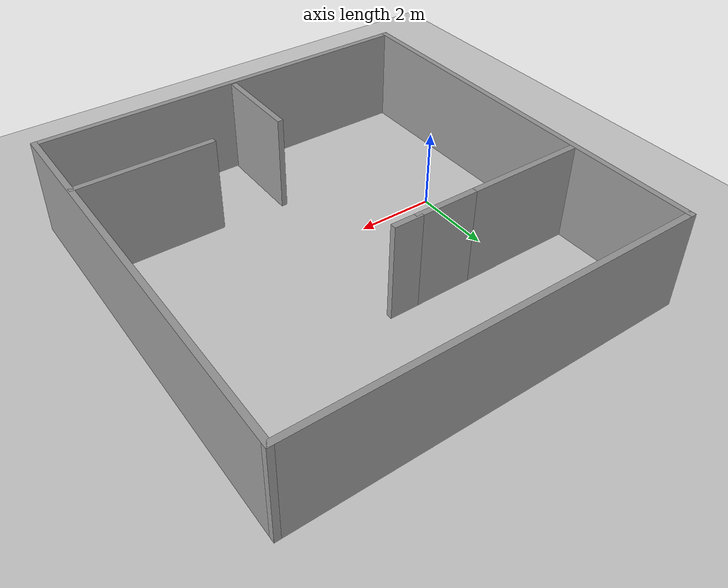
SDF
<sdf version="1.7">
 <world name="default">
  <light name="sun" type="directional">
   <pose>0 0 10 0 -0 0</pose>
   <diffuse>0.8 0.8 0.8 1</diffuse>
   <specular>0.2 0.2 0.2 1</specular>
   <attenuation>
    <range>1000</range>
    <constant>0.9</constant>
    <linear>0.01</linear>
    <quadratic>0.001</quadratic>
   </attenuation>
   <direction>-0.5 0.1 -0.9</direction>
   <spot><inner_angle>0</inner_angle><outer_angle>0</outer_angle><falloff>0</falloff></spot>
  </light>
  <model name="ground_plane">
   <static>1</static>
   <link name="link">
    <collision name="collision">
     <geometry><plane><normal>0 0 1</normal><size>100 100</size></plane></geometry>
     <surface>
      <contact><collide_bitmask>65535</collide_bitmask></contact>
      <friction><ode><mu>100</mu><mu2>50</mu2></ode></friction>
     </surface>
    </collision>
    <visual name="visual">
     <cast_shadows>0</cast_shadows>
     <geometry><plane><normal>0 0 1</normal><size>100 100</size></plane></geometry>
     <material>
      <script><uri>file://media/materials/scripts/gazebo.material</uri><name>Gazebo/Grey</name></script>
     </material>
    </visual>
   </link>
  </model>
  <gravity>0 0 -9.8</gravity>
  <magnetic_field>6e-06 2.3e-05 -4.2e-05</magnetic_field>
  <atmosphere type="adiabatic"/>
  <physics type="ode">
   <max_step_size>0.001</max_step_size>
   <real_time_factor>1</real_time_factor>
   <real_time_update_rate>1000</real_time_update_rate>
  </physics>
  <scene><ambient>0.4 0.4 0.4 1</ambient><background>0.7 0.7 0.7 1</background><shadows>1</shadows></scene>
  <spherical_coordinates>
   <surface_model>EARTH_WGS84</surface_model>
   <latitude_deg>0</latitude_deg>
   <longitude_deg>0</longitude_deg>
   <elevation>0</elevation>
   <heading_deg>0</heading_deg>
  </spherical_coordinates>
  <model name="room">
   <pose>3.177 0.84848 0 0 -0 0</pose>
   <link name="Wall_1">
    <collision name="Wall_1_Collision">
     <geometry><box><size>10.5 0.15 2.5</size></box></geometry>
     <pose>0 0 1.25 0 -0 0</pose>
    </collision>
    <visual name="Wall_1_Visual">
     <pose>0 0 1.25 0 -0 0</pose>
     <geometry><box><size>10.5 0.15 2.5</size></box></geometry>
     <material>
      <script><uri>file://media/materials/scripts/gazebo.material</uri><name>Gazebo/Grey</name></script>
      <ambient>1 1 1 1</ambient>
     </material>
     <meta><layer>0</layer></meta>
    </visual>
    <pose>-5.05 0 0 0 -0 -1.5708</pose>
   </link>
   <link name="Wall_11">
    <collision name="Wall_11_Collision">
     <geometry><box><size>3 0.15 2.5</size></box></geometry>
     <pose>0 0 1.25 0 -0 0</pose>
    </collision>
    <visual name="Wall_11_Visual">
     <pose>0 0 1.25 0 -0 0</pose>
     <geometry><box><size>3 0.15 2.5</size></box></geometry>
     <material>
      <script><uri>file://media/materials/scripts/gazebo.material</uri><name>Gazebo/Grey</name></script>
      <ambient>1 1 1 1</ambient>
     </material>
     <meta><layer>0</layer></meta>
    </visual>
    <pose>-3.49319 1.99829 0 0 -0 0</pose>
   </link>
   <link name="Wall_12">
    <collision name="Wall_12_Collision">
     <geometry><box><size>1.75 0.15 2.5</size></box></geometry>
     <pose>0 0 1.25 0 -0 0</pose>
    </collision>
    <visual name="Wall_12_Visual">
     <pose>0 0 1.25 0 -0 0</pose>
     <geometry><box><size>1.75 0.15 2.5</size></box></geometry>
     <material>
      <script><uri>file://media/materials/scripts/gazebo.material</uri><name>Gazebo/Grey</name></script>
      <ambient>1 1 1 1</ambient>
     </material>
     <meta><layer>0</layer></meta>
    </visual>
    <pose>-1.26819 1.99829 0 0 -0 0</pose>
   </link>
   <link name="Wall_13">
    <collision name="Wall_13_Collision">
     <geometry><box><size>0.75 0.15 2.5</size></box></geometry>
     <pose>0 0 1.25 0 -0 0</pose>
    </collision>
    <visual name="Wall_13_Visual">
     <pose>0 0 1.25 0 -0 0</pose>
     <geometry><box><size>0.75 0.15 2.5</size></box></geometry>
     <material>
      <script><uri>file://media/materials/scripts/gazebo.material</uri><name>Gazebo/Grey</name></script>
      <ambient>1 1 1 1</ambient>
     </material>
     <meta><layer>0</layer></meta>
    </visual>
    <pose>-0.168191 1.99829 0 0 -0 0</pose>
   </link>
   <link name="Wall_17">
    <collision name="Wall_17_Collision">
     <geometry><box><size>3.5 0.15 2.5</size></box></geometry>
     <pose>0 0 1.25 0 -0 0</pose>
    </collision>
    <visual name="Wall_17_Visual">
     <pose>0 0 1.25 0 -0 0</pose>
     <geometry><box><size>3.5 0.15 2.5</size></box></geometry>
     <material>
      <script><uri>file://media/materials/scripts/gazebo.material</uri><name>Gazebo/Grey</name></script>
      <ambient>1 1 1 1</ambient>
     </material>
     <meta><layer>0</layer></meta>
    </visual>
    <pose>3.33722 -2.9547 0 0 -0 0</pose>
   </link>
   <link name="Wall_2">
    <collision name="Wall_2_Collision">
     <geometry><box><size>10.25 0.15 2.5</size></box></geometry>
     <pose>0 0 1.25 0 -0 0</pose>
    </collision>
    <visual name="Wall_2_Visual">
     <pose>0 0 1.25 0 -0 0</pose>
     <geometry><box><size>10.25 0.15 2.5</size></box></geometry>
     <material>
      <script><uri>file://media/materials/scripts/gazebo.material</uri><name>Gazebo/Grey</name></script>
      <ambient>1 1 1 1</ambient>
     </material>
     <meta><layer>0</layer></meta>
    </visual>
    <pose>-0 -5.175 0 0 -0 0</pose>
   </link>
   <link name="Wall_3">
    <collision name="Wall_3_Collision">
     <geometry><box><size>10.5 0.15 2.5</size></box></geometry>
     <pose>0 0 1.25 0 -0 0</pose>
    </collision>
    <visual name="Wall_3_Visual">
     <pose>0 0 1.25 0 -0 0</pose>
     <geometry><box><size>10.5 0.15 2.5</size></box></geometry>
     <material>
      <script><uri>file://media/materials/scripts/gazebo.material</uri><name>Gazebo/Grey</name></script>
      <ambient>1 1 1 1</ambient>
     </material>
     <meta><layer>0</layer></meta>
    </visual>
    <pose>5.05 0 0 0 -0 1.5708</pose>
   </link>
   <link name="Wall_4">
    <collision name="Wall_4_Collision">
     <geometry><box><size>10.25 0.15 2.5</size></box></geometry>
     <pose>0 0 1.25 0 -0 0</pose>
    </collision>
    <visual name="Wall_4_Visual">
     <pose>0 0 1.25 0 -0 0</pose>
     <geometry><box><size>10.25 0.15 2.5</size></box></geometry>
     <material>
      <script><uri>file://media/materials/scripts/gazebo.material</uri><name>Gazebo/Grey</name></script>
      <ambient>1 1 1 1</ambient>
     </material>
     <meta><layer>0</layer></meta>
    </visual>
    <pose>-0 5.175 0 0 -0 3.14159</pose>
   </link>
   <link name="Wall_6">
    <collision name="Wall_6_Collision">
     <geometry><box><size>2.25 0.15 2.5</size></box></geometry>
     <pose>0 0 1.25 0 -0 0</pose>
    </collision>
    <visual name="Wall_6_Visual">
     <pose>0 0 1.25 0 -0 0</pose>
     <geometry><box><size>2.25 0.15 2.5</size></box></geometry>
     <material>
      <script><uri>file://media/materials/scripts/gazebo.material</uri><name>Gazebo/Grey</name></script>
      <ambient>1 1 1 1</ambient>
     </material>
     <meta><layer>0</layer></meta>
    </visual>
    <pose>-0.106712 -3.93394 0 0 -0 -1.5708</pose>
   </link>
   <static>1</static>
  </model>
 </world>
</sdf>
